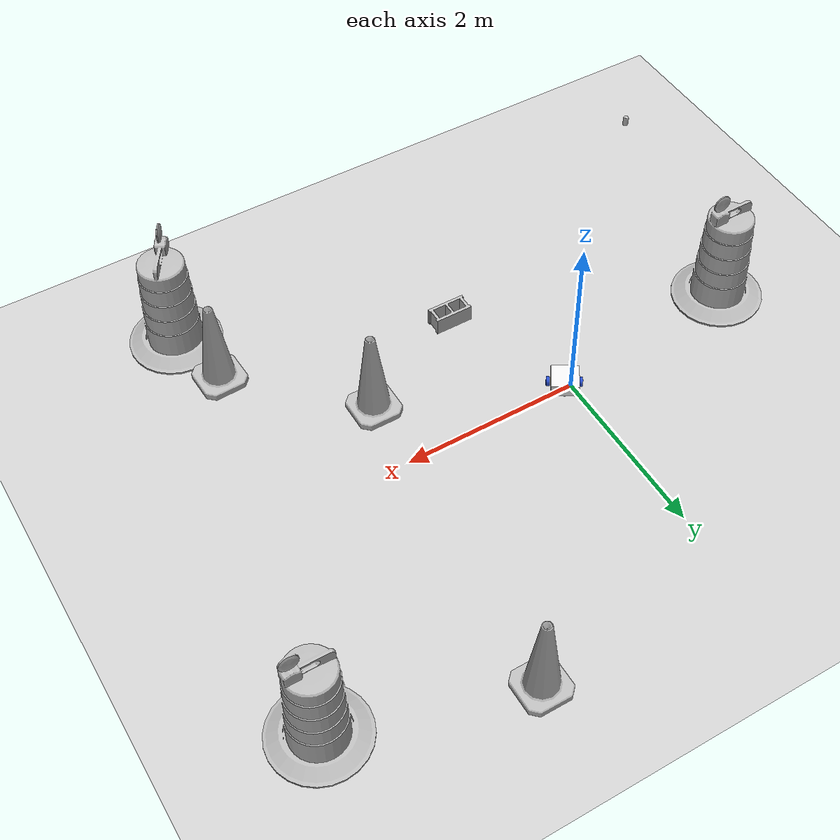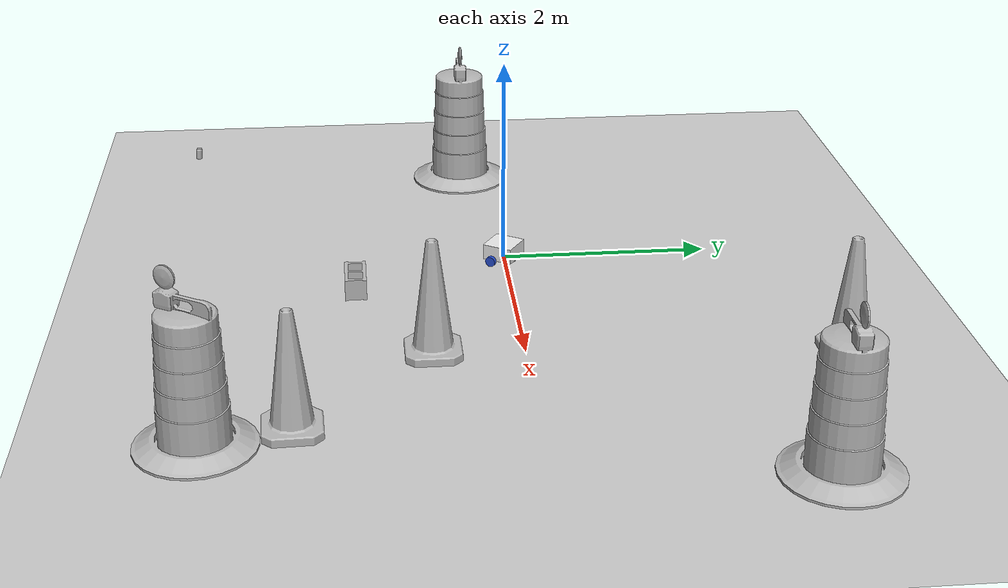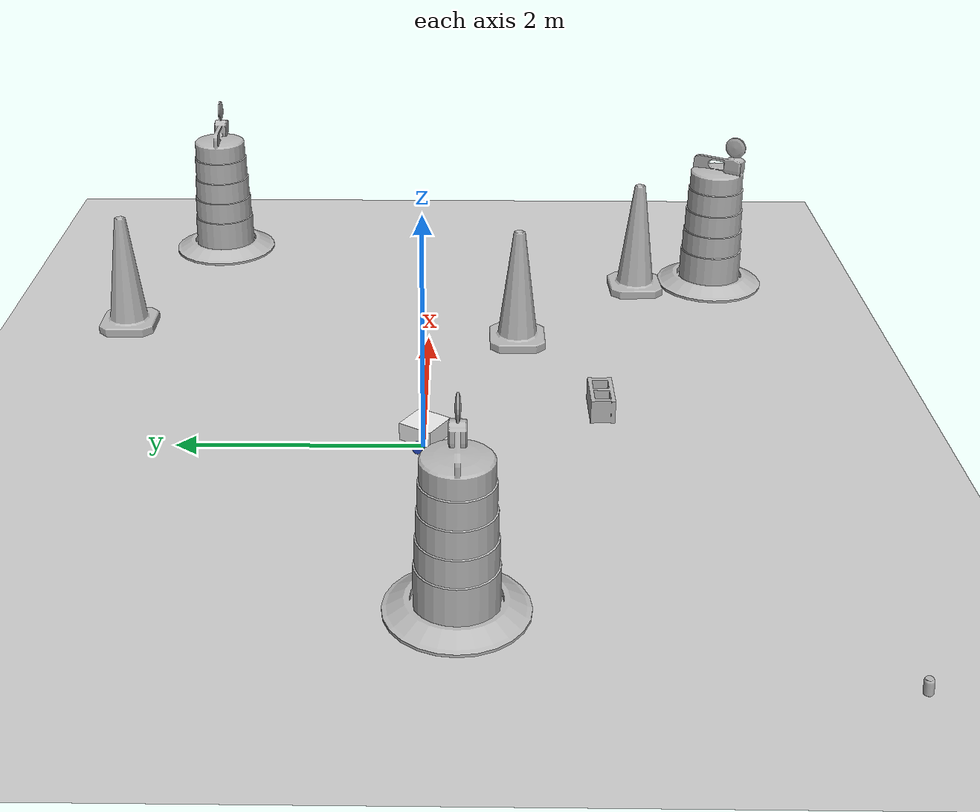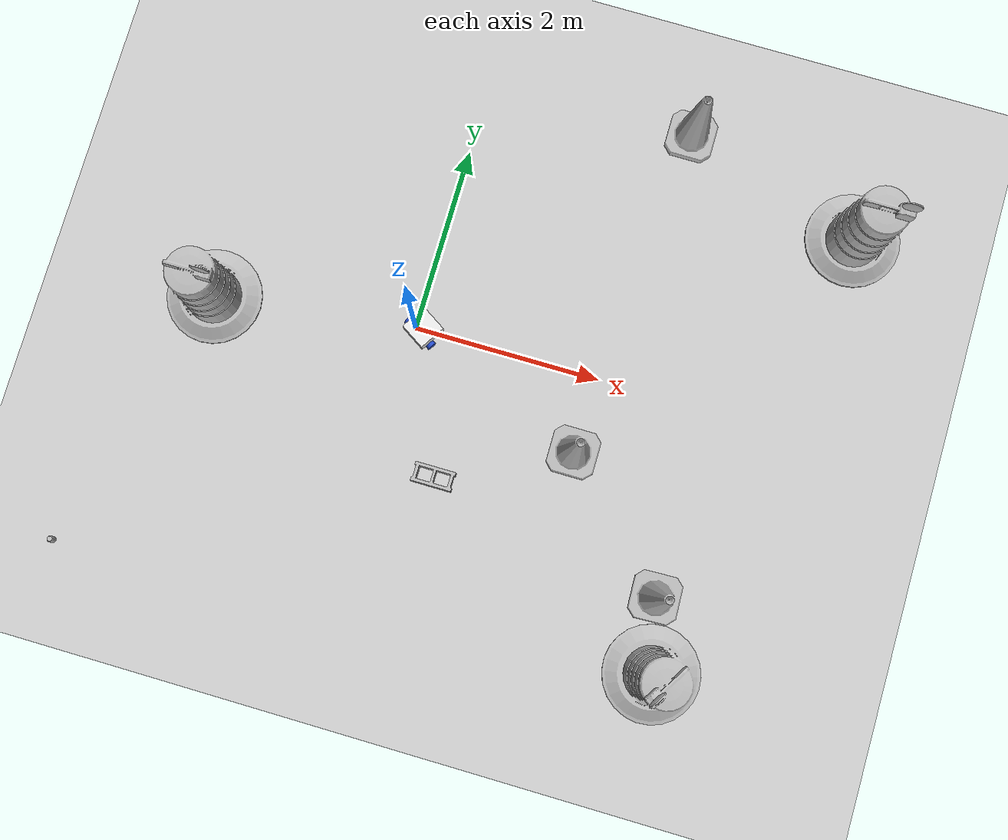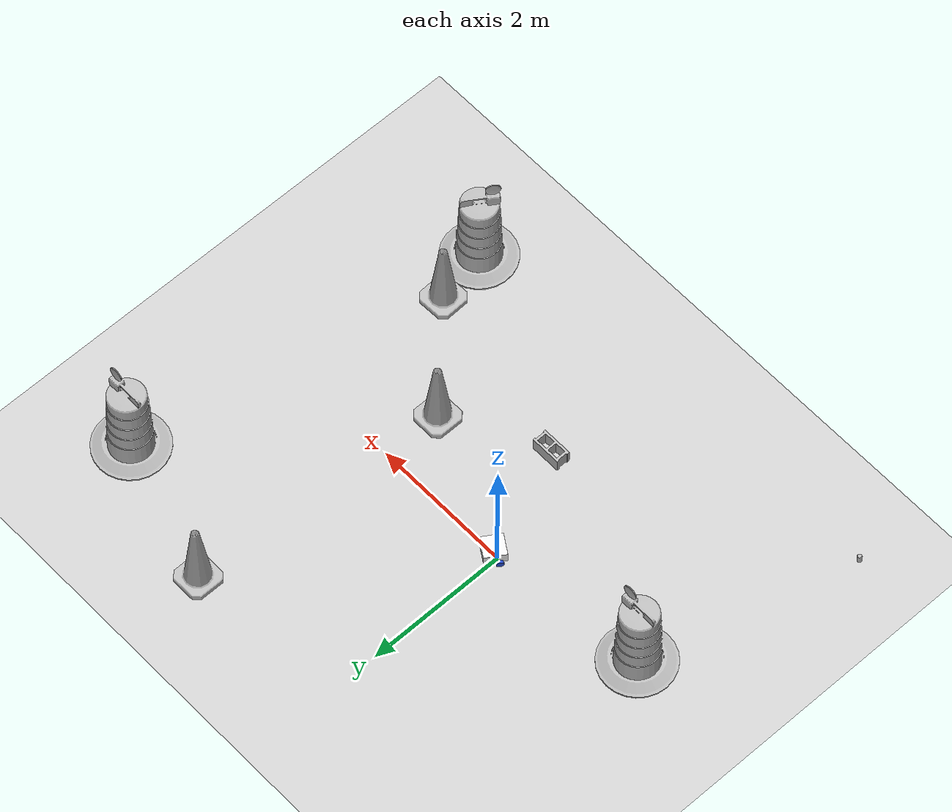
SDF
<sdf version="1.7">
 <world name="default">
  <light name="sun" type="directional">
   <pose>0 0 10 0 -0 0</pose>
   <diffuse>0.8 0.8 0.8 1</diffuse>
   <specular>0.2 0.2 0.2 1</specular>
   <attenuation>
    <range>1000</range>
    <constant>0.9</constant>
    <linear>0.01</linear>
    <quadratic>0.001</quadratic>
   </attenuation>
   <direction>-0.5 0.1 -0.9</direction>
   <spot><inner_angle>0</inner_angle><outer_angle>0</outer_angle><falloff>0</falloff></spot>
  </light>
  <model name="ground_plane">
   <static>1</static>
   <link name="link">
    <collision name="collision">
     <geometry><plane><normal>0 0 1</normal><size>100 100</size></plane></geometry>
     <surface>
      <contact><collide_bitmask>65535</collide_bitmask></contact>
      <friction><ode><mu>100</mu><mu2>50</mu2></ode></friction>
     </surface>
    </collision>
    <visual name="visual">
     <cast_shadows>0</cast_shadows>
     <geometry><plane><normal>0 0 1</normal><size>100 100</size></plane></geometry>
     <material>
      <script><uri>file://media/materials/scripts/gazebo.material</uri><name>Gazebo/Grey</name></script>
     </material>
    </visual>
   </link>
  </model>
  <gravity>0 0 -9.8</gravity>
  <magnetic_field>6e-06 2.3e-05 -4.2e-05</magnetic_field>
  <atmosphere type="adiabatic"/>
  <physics type="ode">
   <max_step_size>0.001</max_step_size>
   <real_time_factor>1</real_time_factor>
   <real_time_update_rate>1000</real_time_update_rate>
  </physics>
  <scene><ambient>0.4 0.4 0.4 1</ambient><background>0.7 0.7 0.7 1</background><shadows>1</shadows></scene>
  <audio><device>default</device></audio>
  <spherical_coordinates>
   <surface_model>EARTH_WGS84</surface_model>
   <latitude_deg>0</latitude_deg>
   <longitude_deg>0</longitude_deg>
   <elevation>0</elevation>
   <heading_deg>0</heading_deg>
  </spherical_coordinates>
  <model name="my_bot">
   <link name="base_link">
    <inertial>
     <pose>0.065 0 0.0625 0 -0 0</pose>
     <mass>0.6</mass>
     <inertia>
      <ixx>0.00525625</ixx>
      <ixy>0</ixy>
      <ixz>0.0005625</ixz>
      <iyy>0.00593125</iyy>
      <iyz>0</iyz>
      <izz>0.008275</izz>
     </inertia>
    </inertial>
    <collision name="base_link_fixed_joint_lump__chassis_collision">
     <pose>0.05 0 0.075 0 -0 0</pose>
     <geometry><box><size>0.3 0.3 0.15</size></box></geometry>
    </collision>
    <collision name="base_link_fixed_joint_lump__caster_wheel_collision_1">
     <pose>0.14 0 0 0 -0 0</pose>
     <geometry><sphere><radius>0.05</radius></sphere></geometry>
     <surface><friction><ode><mu>0.001</mu><mu2>0.001</mu2></ode></friction></surface>
    </collision>
    <visual name="base_link_fixed_joint_lump__chassis_visual">
     <pose>0.05 0 0.075 0 -0 0</pose>
     <geometry><box><size>0.3 0.3 0.15</size></box></geometry>
     <material>
      <script><name>Gazebo/White</name><uri>file://media/materials/scripts/gazebo.material</uri></script>
     </material>
    </visual>
    <visual name="base_link_fixed_joint_lump__caster_wheel_visual_1">
     <pose>0.14 0 0 0 -0 0</pose>
     <geometry><sphere><radius>0.05</radius></sphere></geometry>
     <material>
      <script><name>Gazebo/Black</name><uri>file://media/materials/scripts/gazebo.material</uri></script>
     </material>
    </visual>
   </link>
   <joint name="left_wheel_joint" type="revolute">
    <pose relative_to="base_link">0 0.175 0 -1.5708 0 0</pose>
    <parent>base_link</parent>
    <child>left_wheel</child>
    <axis>
     <xyz>0 0 1</xyz>
     <limit><lower>-1e+16</lower><upper>1e+16</upper></limit>
     <dynamics><spring_reference>0</spring_reference><spring_stiffness>0</spring_stiffness></dynamics>
    </axis>
   </joint>
   <link name="left_wheel">
    <pose relative_to="left_wheel_joint">0 0 0 0 -0 0</pose>
    <inertial>
     <mass>0.1</mass>
     <inertia>
      <ixx>7.58333e-05</ixx>
      <ixy>0</ixy>
      <ixz>0</ixz>
      <iyy>7.58333e-05</iyy>
      <iyz>0</iyz>
      <izz>0.000125</izz>
     </inertia>
    </inertial>
    <collision name="left_wheel_collision">
     <geometry><cylinder><length>0.04</length><radius>0.05</radius></cylinder></geometry>
    </collision>
    <visual name="left_wheel_visual">
     <geometry><cylinder><length>0.04</length><radius>0.05</radius></cylinder></geometry>
     <material>
      <script><name>Gazebo/Blue</name><uri>file://media/materials/scripts/gazebo.material</uri></script>
     </material>
    </visual>
   </link>
   <joint name="right_wheel_joint" type="revolute">
    <pose relative_to="base_link">0 -0.175 0 1.5708 -0 0</pose>
    <parent>base_link</parent>
    <child>right_wheel</child>
    <axis>
     <xyz>0 0 -1</xyz>
     <limit><lower>-1e+16</lower><upper>1e+16</upper></limit>
     <dynamics><spring_reference>0</spring_reference><spring_stiffness>0</spring_stiffness></dynamics>
    </axis>
   </joint>
   <link name="right_wheel">
    <pose relative_to="right_wheel_joint">0 0 0 0 -0 0</pose>
    <inertial>
     <mass>0.1</mass>
     <inertia>
      <ixx>7.58333e-05</ixx>
      <ixy>0</ixy>
      <ixz>0</ixz>
      <iyy>7.58333e-05</iyy>
      <iyz>0</iyz>
      <izz>0.000125</izz>
     </inertia>
    </inertial>
    <collision name="right_wheel_collision">
     <geometry><cylinder><length>0.04</length><radius>0.05</radius></cylinder></geometry>
    </collision>
    <visual name="right_wheel_visual">
     <geometry><cylinder><length>0.04</length><radius>0.05</radius></cylinder></geometry>
     <material>
      <script><name>Gazebo/Blue</name><uri>file://media/materials/scripts/gazebo.material</uri></script>
     </material>
    </visual>
   </link>
   <static>0</static>
   <plugin name="diff_drive" filename="libgazebo_ros_diff_drive.so">
    <left_joint>left_wheel_joint</left_joint>
    <right_joint>right_wheel_joint</right_joint>
    <wheel_separation>0.35</wheel_separation>
    <wheel_diameter>0.1</wheel_diameter>
    <max_wheel_torque>200</max_wheel_torque>
    <max_wheel_acceleration>10.0</max_wheel_acceleration>
    <odometry_frame>odom</odometry_frame>
    <robot_base_frame>base_link</robot_base_frame>
    <publish_odom>1</publish_odom>
    <publish_odom_tf>1</publish_odom_tf>
    <publish_wheel_tf>1</publish_wheel_tf>
   </plugin>
   <pose>0.054373 -0.050182 0.05 -0 1.6e-05 1.00326</pose>
  </model>
  <model name="Construction Barrel">
   <link name="link">
    <inertial>
     <pose>0 0 0.4 0 -0 0</pose>
     <mass>500</mass>
     <inertia><ixx>51.2096</ixx><iyy>51.2096</iyy><izz>25</izz><ixy>0</ixy><ixz>0</ixz><iyz>0</iyz></inertia>
    </inertial>
    <collision name="collision">
     <geometry><mesh><uri>model://construction_barrel/meshes/construction_barrel.dae</uri></mesh></geometry>
    </collision>
    <visual name="visual">
     <geometry><mesh><uri>model://construction_barrel/meshes/construction_barrel.dae</uri></mesh></geometry>
    </visual>
   </link>
   <pose>-2.16083 -0.27529 -1e-06 2e-06 -2e-06 -1.8e-05</pose>
  </model>
  <model name="Construction Cone">
   <link name="link">
    <collision name="collision">
     <geometry>
      <mesh><scale>10 10 10</scale><uri>model://construction_cone/meshes/construction_cone.dae</uri></mesh>
     </geometry>
    </collision>
    <visual name="visual">
     <geometry>
      <mesh><scale>10 10 10</scale><uri>model://construction_cone/meshes/construction_cone.dae</uri></mesh>
     </geometry>
    </visual>
    <inertial>
     <inertia><ixx>1</ixx><ixy>0</ixy><ixz>0</ixz><iyy>1</iyy><iyz>0</iyz><izz>1</izz></inertia>
     <mass>1</mass>
    </inertial>
   </link>
   <pose>1.95351 -0.814185 -0 0 -0 0</pose>
  </model>
  <model name="Construction Cone_0">
   <link name="link">
    <collision name="collision">
     <geometry>
      <mesh><scale>10 10 10</scale><uri>model://construction_cone/meshes/construction_cone.dae</uri></mesh>
     </geometry>
    </collision>
    <visual name="visual">
     <geometry>
      <mesh><scale>10 10 10</scale><uri>model://construction_cone/meshes/construction_cone.dae</uri></mesh>
     </geometry>
    </visual>
    <inertial>
     <inertia><ixx>1</ixx><ixy>0</ixy><ixz>0</ixz><iyy>1</iyy><iyz>0</iyz><izz>1</izz></inertia>
     <mass>1</mass>
    </inertial>
   </link>
   <pose>3.17006 -2.02294 -8e-06 1e-06 -0 0.037427</pose>
  </model>
  <model name="Construction Barrel_0">
   <link name="link">
    <inertial>
     <pose>0 0 0.4 0 -0 0</pose>
     <mass>500</mass>
     <inertia><ixx>51.2096</ixx><iyy>51.2096</iyy><izz>25</izz><ixy>0</ixy><ixz>0</ixz><iyz>0</iyz></inertia>
    </inertial>
    <collision name="collision">
     <geometry><mesh><uri>model://construction_barrel/meshes/construction_barrel.dae</uri></mesh></geometry>
    </collision>
    <visual name="visual">
     <geometry><mesh><uri>model://construction_barrel/meshes/construction_barrel.dae</uri></mesh></geometry>
    </visual>
   </link>
   <pose>3.33878 -2.78432 -2e-06 8e-06 -4e-06 -2.14315</pose>
  </model>
  <model name="cinder_block">
   <link name="link">
    <inertial>
     <pose>0 0 0.1016 0 -0 0</pose>
     <mass>5</mass>
     <inertia>
      <ixx>0.028705</ixx>
      <ixy>0</ixy>
      <iyy>0.073708</iyy>
      <ixz>0</ixz>
      <iyz>0</iyz>
      <izz>0.06908</izz>
     </inertia>
    </inertial>
    <visual name="visual">
     <geometry><mesh><uri>model://cinder_block/meshes/cinder_block.dae</uri></mesh></geometry>
    </visual>
    <collision name="left">
     <pose>0 -0.08465 0.1016 0 -0 0</pose>
     <geometry><box><size>0.43495 0.0339 0.2032</size></box></geometry>
     <surface>
      <contact><ode><max_vel>0.1</max_vel><min_depth>0.001</min_depth></ode></contact>
      <friction><ode><mu>1</mu><mu2>1</mu2></ode></friction>
     </surface>
    </collision>
    <collision name="right">
     <pose>0 0.08465 0.1016 0 -0 0</pose>
     <geometry><box><size>0.43495 0.0339 0.2032</size></box></geometry>
     <surface>
      <contact><ode><max_vel>0.1</max_vel><min_depth>0.001</min_depth></ode></contact>
      <friction><ode><mu>1</mu><mu2>1</mu2></ode></friction>
     </surface>
    </collision>
    <collision name="front">
     <pose>0.18625 0 0.1016 0 -0 0</pose>
     <geometry><box><size>0.0339 0.1354 0.203</size></box></geometry>
     <surface>
      <contact><ode><max_vel>0.1</max_vel><min_depth>0.001</min_depth></ode></contact>
      <friction><ode><mu>1</mu><mu2>1</mu2></ode></friction>
     </surface>
    </collision>
    <collision name="middle">
     <pose>0 0 0.1016 0 -0 0</pose>
     <geometry><box><size>0.0339 0.1354 0.203</size></box></geometry>
     <surface>
      <contact><ode><max_vel>0.1</max_vel><min_depth>0.001</min_depth></ode></contact>
      <friction><ode><mu>1</mu><mu2>1</mu2></ode></friction>
     </surface>
    </collision>
    <collision name="back">
     <pose>-0.18625 0 0.1016 0 -0 0</pose>
     <geometry><box><size>0.0339 0.1354 0.203</size></box></geometry>
     <surface>
      <contact><ode><max_vel>0.1</max_vel><min_depth>0.001</min_depth></ode></contact>
      <friction><ode><mu>1</mu><mu2>1</mu2></ode></friction>
     </surface>
    </collision>
   </link>
   <pose>0.626988 -1.47327 -6e-06 -1e-06 2.8e-05 -0</pose>
  </model>
  <model name="Construction Barrel_1">
   <link name="link">
    <inertial>
     <pose>0 0 0.4 0 -0 0</pose>
     <mass>500</mass>
     <inertia><ixx>51.2096</ixx><iyy>51.2096</iyy><izz>25</izz><ixy>0</ixy><ixz>0</ixz><iyz>0</iyz></inertia>
    </inertial>
    <collision name="collision">
     <geometry><mesh><uri>model://construction_barrel/meshes/construction_barrel.dae</uri></mesh></geometry>
    </collision>
    <visual name="visual">
     <geometry><mesh><uri>model://construction_barrel/meshes/construction_barrel.dae</uri></mesh></geometry>
    </visual>
   </link>
   <pose>4.20161 2.20829 -0 0 -0 -1.1e-05</pose>
  </model>
  <model name="Construction Cone_1">
   <link name="link">
    <collision name="collision">
     <geometry>
      <mesh><scale>10 10 10</scale><uri>model://construction_cone/meshes/construction_cone.dae</uri></mesh>
     </geometry>
    </collision>
    <visual name="visual">
     <geometry>
      <mesh><scale>10 10 10</scale><uri>model://construction_cone/meshes/construction_cone.dae</uri></mesh>
     </geometry>
    </visual>
    <inertial>
     <inertia><ixx>1</ixx><ixy>0</ixy><ixz>0</ixz><iyy>1</iyy><iyz>0</iyz><izz>1</izz></inertia>
     <mass>1</mass>
    </inertial>
   </link>
   <pose>2.24493 2.83574 -5e-06 -4e-06 1e-06 0</pose>
  </model>
  <model name="coke_can">
   <link name="link">
    <inertial>
     <pose>0 0 0.06 0 -0 0</pose>
     <mass>0.39</mass>
     <inertia>
      <ixx>0.00055575</ixx>
      <ixy>0</ixy>
      <ixz>0</ixz>
      <iyy>0.00055575</iyy>
      <iyz>0</iyz>
      <izz>0.0001755</izz>
     </inertia>
    </inertial>
    <collision name="collision">
     <pose>0.003937 0.004724 -0.18 0 -0 0</pose>
     <geometry><mesh><uri>model://coke_can/meshes/coke_can.dae</uri></mesh></geometry>
     <surface>
      <friction><ode><mu>1</mu><mu2>1</mu2></ode></friction>
      <contact><ode><kp>1e+07</kp><kd>1</kd><min_depth>0.001</min_depth><max_vel>0.1</max_vel></ode></contact>
     </surface>
    </collision>
    <visual name="visual">
     <pose>0.003937 0.004724 -0.18 0 -0 0</pose>
     <geometry><mesh><uri>model://coke_can/meshes/coke_can.dae</uri></mesh></geometry>
    </visual>
   </link>
   <pose>-2.98488 -3.19714 -0.002754 -0.060802 0.003803 -0.000543</pose>
  </model>
 </world>
</sdf>
